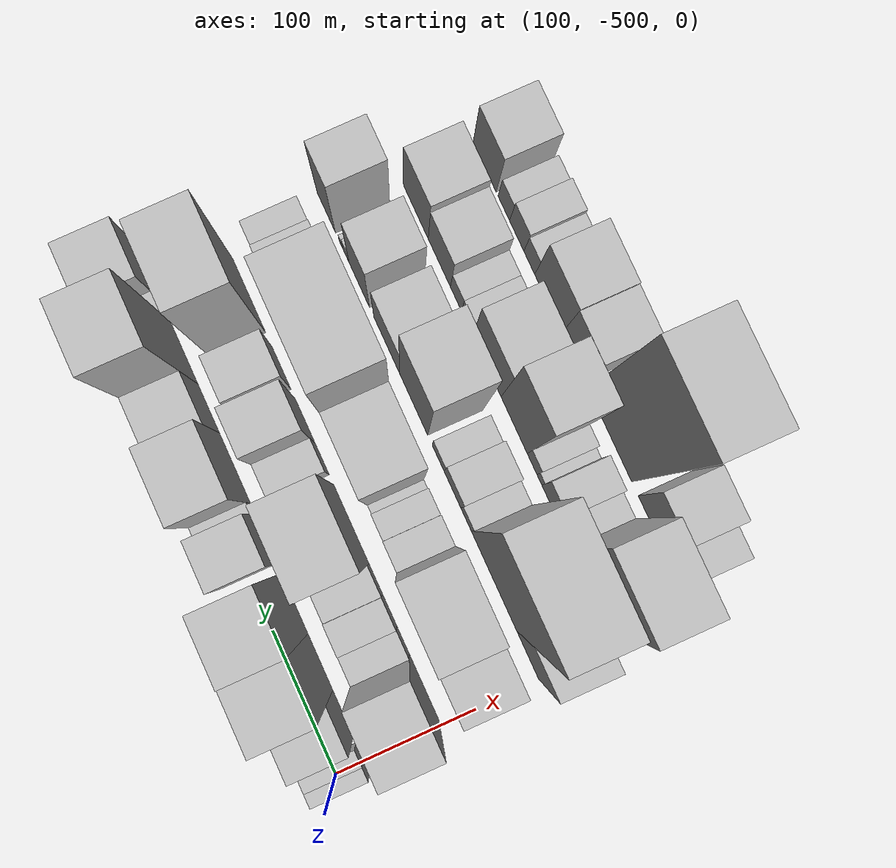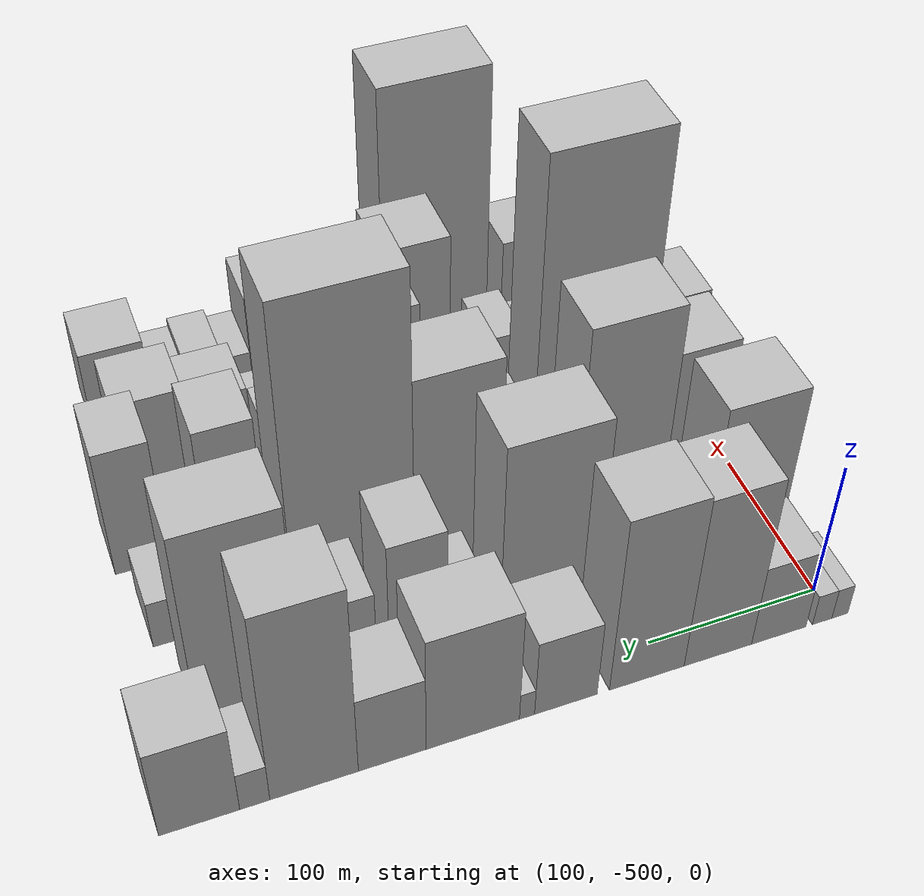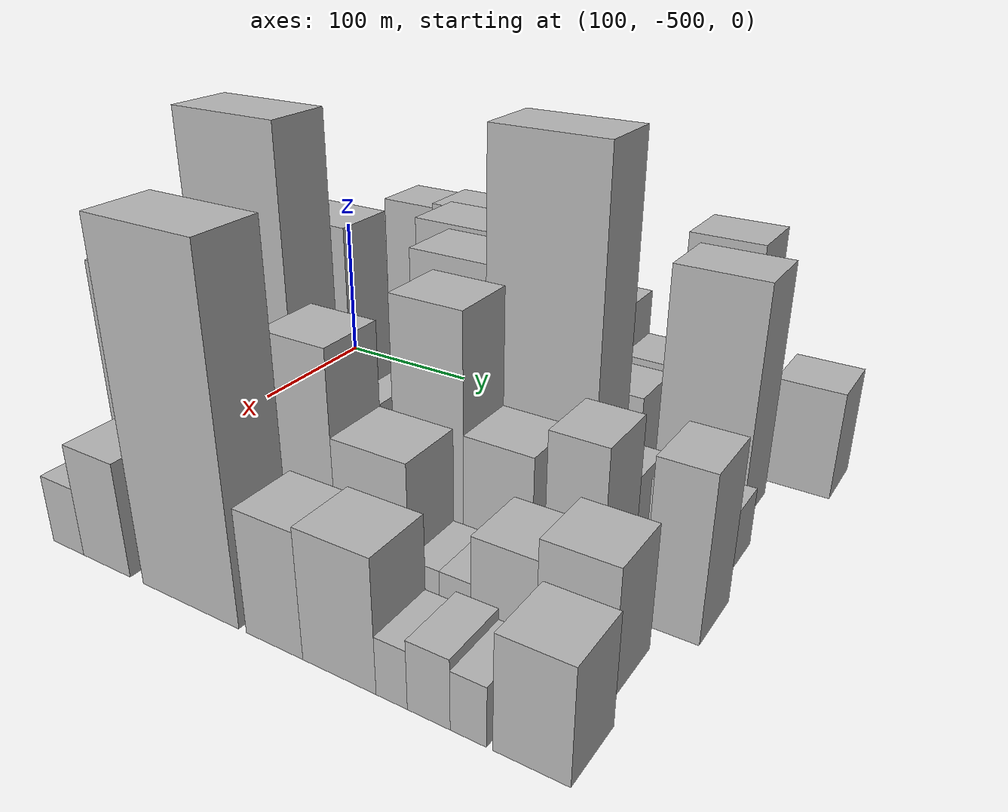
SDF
<sdf version="1.6">
 <world name="default">
  <model name="building_9">
   <static>1</static>
   <pose>100.0000 -504.2297 0 0.000000 0.000000 0.000000</pose>
   <link name="link">
    <pose>0 0 12.00 0 0 0</pose>
    <collision name="collision"><geometry><box><size>40.0000 9.7638 24.0000</size></box></geometry></collision>
    <visual name="visual">
     <cast_shadows>0</cast_shadows>
     <geometry><box><size>40.0000 9.7638 24.0000</size></box></geometry>
     <material>
      <script>
       <uri>model://HANNAS_wall/materials/scripts</uri>
       <uri>model://HANNAS_wall/materials/textures</uri>
       <name>vrc/HANNAS_wall</name>
      </script>
     </material>
    </visual>
   </link>
  </model>
  <model name="building_10">
   <static>1</static>
   <pose>100.0000 -493.4084 0 0.000000 0.000000 0.000000</pose>
   <link name="link">
    <pose>0 0 12.00 0 0 0</pose>
    <collision name="collision"><geometry><box><size>40.0000 11.8788 24.0000</size></box></geometry></collision>
    <visual name="visual">
     <cast_shadows>0</cast_shadows>
     <geometry><box><size>40.0000 11.8788 24.0000</size></box></geometry>
     <material>
      <script>
       <uri>model://HANNAS_wall/materials/scripts</uri>
       <uri>model://HANNAS_wall/materials/textures</uri>
       <name>vrc/HANNAS_wall</name>
      </script>
     </material>
    </visual>
   </link>
  </model>
  <model name="building_11">
   <static>1</static>
   <pose>100.0000 -467.0780 0 0.000000 0.000000 0.000000</pose>
   <link name="link">
    <pose>0 0 31.50 0 0 0</pose>
    <collision name="collision"><geometry><box><size>40.0000 32.7820 63.0000</size></box></geometry></collision>
    <visual name="visual">
     <cast_shadows>0</cast_shadows>
     <geometry><box><size>40.0000 32.7820 63.0000</size></box></geometry>
     <material>
      <script>
       <uri>model://HANNAS_wall/materials/scripts</uri>
       <uri>model://HANNAS_wall/materials/textures</uri>
       <name>vrc/HANNAS_wall</name>
      </script>
     </material>
    </visual>
   </link>
  </model>
  <model name="building_12">
   <static>1</static>
   <pose>100.0000 -430.7783 0 0.000000 0.000000 0.000000</pose>
   <link name="link">
    <pose>0 0 66.00 0 0 0</pose>
    <collision name="collision"><geometry><box><size>40.0000 39.8175 132.0000</size></box></geometry></collision>
    <visual name="visual">
     <cast_shadows>0</cast_shadows>
     <geometry><box><size>40.0000 39.8175 132.0000</size></box></geometry>
     <material>
      <script>
       <uri>model://HANNAS_wall/materials/scripts</uri>
       <uri>model://HANNAS_wall/materials/textures</uri>
       <name>vrc/HANNAS_wall</name>
      </script>
     </material>
    </visual>
   </link>
  </model>
  <model name="building_13">
   <static>1</static>
   <pose>100.0000 -389.3200 0 0.000000 0.000000 0.000000</pose>
   <link name="link">
    <pose>0 0 67.50 0 0 0</pose>
    <collision name="collision"><geometry><box><size>40.0000 43.0991 135.0000</size></box></geometry></collision>
    <visual name="visual">
     <cast_shadows>0</cast_shadows>
     <geometry><box><size>40.0000 43.0991 135.0000</size></box></geometry>
     <material>
      <script>
       <uri>model://HANNAS_wall/materials/scripts</uri>
       <uri>model://HANNAS_wall/materials/textures</uri>
       <name>vrc/HANNAS_wall</name>
      </script>
     </material>
    </visual>
   </link>
  </model>
  <model name="building_14">
   <static>1</static>
   <pose>100.0000 -343.1972 0 0.000000 0.000000 0.000000</pose>
   <link name="link">
    <pose>0 0 30.00 0 0 0</pose>
    <collision name="collision"><geometry><box><size>40.0000 35.1464 60.0000</size></box></geometry></collision>
    <visual name="visual">
     <cast_shadows>0</cast_shadows>
     <geometry><box><size>40.0000 35.1464 60.0000</size></box></geometry>
     <material>
      <script>
       <uri>model://HANNAS_wall/materials/scripts</uri>
       <uri>model://HANNAS_wall/materials/textures</uri>
       <name>vrc/HANNAS_wall</name>
      </script>
     </material>
    </visual>
   </link>
  </model>
  <model name="building_15">
   <static>1</static>
   <pose>100.0000 -321.4226 0 0.000000 0.000000 0.000000</pose>
   <link name="link">
    <pose>0 0 10.50 0 0 0</pose>
    <collision name="collision"><geometry><box><size>40.0000 8.4029 21.0000</size></box></geometry></collision>
    <visual name="visual">
     <cast_shadows>0</cast_shadows>
     <geometry><box><size>40.0000 8.4029 21.0000</size></box></geometry>
     <material>
      <script>
       <uri>model://HANNAS_wall/materials/scripts</uri>
       <uri>model://HANNAS_wall/materials/textures</uri>
       <name>vrc/HANNAS_wall</name>
      </script>
     </material>
    </visual>
   </link>
  </model>
  <model name="building_16">
   <static>1</static>
   <pose>100.0000 -291.7921 0 0.000000 0.000000 0.000000</pose>
   <link name="link">
    <pose>0 0 45.00 0 0 0</pose>
    <collision name="collision"><geometry><box><size>40.0000 50.8580 90.0000</size></box></geometry></collision>
    <visual name="visual">
     <cast_shadows>0</cast_shadows>
     <geometry><box><size>40.0000 50.8580 90.0000</size></box></geometry>
     <material>
      <script>
       <uri>model://HANNAS_wall/materials/scripts</uri>
       <uri>model://HANNAS_wall/materials/textures</uri>
       <name>vrc/HANNAS_wall</name>
      </script>
     </material>
    </visual>
   </link>
  </model>
  <model name="building_17">
   <static>1</static>
   <pose>100.0000 -248.3700 0 0.000000 0.000000 0.000000</pose>
   <link name="link">
    <pose>0 0 30.00 0 0 0</pose>
    <collision name="collision"><geometry><box><size>40.0000 35.9863 60.0000</size></box></geometry></collision>
    <visual name="visual">
     <cast_shadows>0</cast_shadows>
     <geometry><box><size>40.0000 35.9863 60.0000</size></box></geometry>
     <material>
      <script>
       <uri>model://HANNAS_wall/materials/scripts</uri>
       <uri>model://HANNAS_wall/materials/textures</uri>
       <name>vrc/HANNAS_wall</name>
      </script>
     </material>
    </visual>
   </link>
  </model>
  <model name="building_18">
   <static>1</static>
   <pose>100.0000 -207.3975 0 0.000000 0.000000 0.000000</pose>
   <link name="link">
    <pose>0 0 73.50 0 0 0</pose>
    <collision name="collision"><geometry><box><size>40.0000 45.9587 147.0000</size></box></geometry></collision>
    <visual name="visual">
     <cast_shadows>0</cast_shadows>
     <geometry><box><size>40.0000 45.9587 147.0000</size></box></geometry>
     <material>
      <script>
       <uri>model://HANNAS_wall/materials/scripts</uri>
       <uri>model://HANNAS_wall/materials/textures</uri>
       <name>vrc/HANNAS_wall</name>
      </script>
     </material>
    </visual>
   </link>
  </model>
  <model name="building_19">
   <static>1</static>
   <pose>100.0000 -176.7365 0 0.000000 0.000000 0.000000</pose>
   <link name="link">
    <pose>0 0 15.00 0 0 0</pose>
    <collision name="collision"><geometry><box><size>40.0000 15.3634 30.0000</size></box></geometry></collision>
    <visual name="visual">
     <cast_shadows>0</cast_shadows>
     <geometry><box><size>40.0000 15.3634 30.0000</size></box></geometry>
     <material>
      <script>
       <uri>model://HANNAS_wall/materials/scripts</uri>
       <uri>model://HANNAS_wall/materials/textures</uri>
       <name>vrc/HANNAS_wall</name>
      </script>
     </material>
    </visual>
   </link>
  </model>
  <model name="building_20">
   <static>1</static>
   <pose>100.0000 -148.7223 0 0.000000 0.000000 0.000000</pose>
   <link name="link">
    <pose>0 0 34.50 0 0 0</pose>
    <collision name="collision"><geometry><box><size>40.0000 40.6649 69.0000</size></box></geometry></collision>
    <visual name="visual">
     <cast_shadows>0</cast_shadows>
     <geometry><box><size>40.0000 40.6649 69.0000</size></box></geometry>
     <material>
      <script>
       <uri>model://HANNAS_wall/materials/scripts</uri>
       <uri>model://HANNAS_wall/materials/textures</uri>
       <name>vrc/HANNAS_wall</name>
      </script>
     </material>
    </visual>
   </link>
  </model>
  <model name="building_57">
   <static>1</static>
   <pose>155.0000 -472.8988 0 0.000000 0.000000 0.000000</pose>
   <link name="link">
    <pose>0 0 63.00 0 0 0</pose>
    <collision name="collision"><geometry><box><size>40.0000 47.0938 126.0000</size></box></geometry></collision>
    <visual name="visual">
     <cast_shadows>0</cast_shadows>
     <geometry><box><size>40.0000 47.0938 126.0000</size></box></geometry>
     <material>
      <script>
       <uri>model://HANNAS_wall/materials/scripts</uri>
       <uri>model://HANNAS_wall/materials/textures</uri>
       <name>vrc/HANNAS_wall</name>
      </script>
     </material>
    </visual>
   </link>
  </model>
  <model name="building_58">
   <static>1</static>
   <pose>155.0000 -439.5121 0 0.000000 0.000000 0.000000</pose>
   <link name="link">
    <pose>0 0 18.00 0 0 0</pose>
    <collision name="collision"><geometry><box><size>40.0000 19.6796 36.0000</size></box></geometry></collision>
    <visual name="visual">
     <cast_shadows>0</cast_shadows>
     <geometry><box><size>40.0000 19.6796 36.0000</size></box></geometry>
     <material>
      <script>
       <uri>model://HANNAS_wall/materials/scripts</uri>
       <uri>model://HANNAS_wall/materials/textures</uri>
       <name>vrc/HANNAS_wall</name>
      </script>
     </material>
    </visual>
   </link>
  </model>
  <model name="building_59">
   <static>1</static>
   <pose>155.0000 -418.4448 0 0.000000 0.000000 0.000000</pose>
   <link name="link">
    <pose>0 0 19.50 0 0 0</pose>
    <collision name="collision"><geometry><box><size>40.0000 22.4549 39.0000</size></box></geometry></collision>
    <visual name="visual">
     <cast_shadows>0</cast_shadows>
     <geometry><box><size>40.0000 22.4549 39.0000</size></box></geometry>
     <material>
      <script>
       <uri>model://HANNAS_wall/materials/scripts</uri>
       <uri>model://HANNAS_wall/materials/textures</uri>
       <name>vrc/HANNAS_wall</name>
      </script>
     </material>
    </visual>
   </link>
  </model>
  <model name="building_60">
   <static>1</static>
   <pose>155.0000 -396.4209 0 0.000000 0.000000 0.000000</pose>
   <link name="link">
    <pose>0 0 18.00 0 0 0</pose>
    <collision name="collision"><geometry><box><size>40.0000 21.5930 36.0000</size></box></geometry></collision>
    <visual name="visual">
     <cast_shadows>0</cast_shadows>
     <geometry><box><size>40.0000 21.5930 36.0000</size></box></geometry>
     <material>
      <script>
       <uri>model://HANNAS_wall/materials/scripts</uri>
       <uri>model://HANNAS_wall/materials/textures</uri>
       <name>vrc/HANNAS_wall</name>
      </script>
     </material>
    </visual>
   </link>
  </model>
  <model name="building_61">
   <static>1</static>
   <pose>155.0000 -357.1461 0 0.000000 0.000000 0.000000</pose>
   <link name="link">
    <pose>0 0 72.00 0 0 0</pose>
    <collision name="collision"><geometry><box><size>40.0000 56.9566 144.0000</size></box></geometry></collision>
    <visual name="visual">
     <cast_shadows>0</cast_shadows>
     <geometry><box><size>40.0000 56.9566 144.0000</size></box></geometry>
     <material>
      <script>
       <uri>model://HANNAS_wall/materials/scripts</uri>
       <uri>model://HANNAS_wall/materials/textures</uri>
       <name>vrc/HANNAS_wall</name>
      </script>
     </material>
    </visual>
   </link>
  </model>
  <model name="building_62">
   <static>1</static>
   <pose>155.0000 -310.1881 0 0.000000 0.000000 0.000000</pose>
   <link name="link">
    <pose>0 0 21.00 0 0 0</pose>
    <collision name="collision"><geometry><box><size>40.0000 22.9594 42.0000</size></box></geometry></collision>
    <visual name="visual">
     <cast_shadows>0</cast_shadows>
     <geometry><box><size>40.0000 22.9594 42.0000</size></box></geometry>
     <material>
      <script>
       <uri>model://HANNAS_wall/materials/scripts</uri>
       <uri>model://HANNAS_wall/materials/textures</uri>
       <name>vrc/HANNAS_wall</name>
      </script>
     </material>
    </visual>
   </link>
  </model>
  <model name="building_63">
   <static>1</static>
   <pose>155.0000 -282.5403 0 0.000000 0.000000 0.000000</pose>
   <link name="link">
    <pose>0 0 48.00 0 0 0</pose>
    <collision name="collision"><geometry><box><size>40.0000 32.3364 96.0000</size></box></geometry></collision>
    <visual name="visual">
     <cast_shadows>0</cast_shadows>
     <geometry><box><size>40.0000 32.3364 96.0000</size></box></geometry>
     <material>
      <script>
       <uri>model://HANNAS_wall/materials/scripts</uri>
       <uri>model://HANNAS_wall/materials/textures</uri>
       <name>vrc/HANNAS_wall</name>
      </script>
     </material>
    </visual>
   </link>
  </model>
  <model name="building_64">
   <static>1</static>
   <pose>155.0000 -243.5212 0 0.000000 0.000000 0.000000</pose>
   <link name="link">
    <pose>0 0 31.50 0 0 0</pose>
    <collision name="collision"><geometry><box><size>40.0000 31.7018 63.0000</size></box></geometry></collision>
    <visual name="visual">
     <cast_shadows>0</cast_shadows>
     <geometry><box><size>40.0000 31.7018 63.0000</size></box></geometry>
     <material>
      <script>
       <uri>model://HANNAS_wall/materials/scripts</uri>
       <uri>model://HANNAS_wall/materials/textures</uri>
       <name>vrc/HANNAS_wall</name>
      </script>
     </material>
    </visual>
   </link>
  </model>
  <model name="building_65">
   <static>1</static>
   <pose>155.0000 -190.1250 0 0.000000 0.000000 0.000000</pose>
   <link name="link">
    <pose>0 0 73.50 0 0 0</pose>
    <collision name="collision"><geometry><box><size>40.0000 55.0906 147.0000</size></box></geometry></collision>
    <visual name="visual">
     <cast_shadows>0</cast_shadows>
     <geometry><box><size>40.0000 55.0906 147.0000</size></box></geometry>
     <material>
      <script>
       <uri>model://HANNAS_wall/materials/scripts</uri>
       <uri>model://HANNAS_wall/materials/textures</uri>
       <name>vrc/HANNAS_wall</name>
      </script>
     </material>
    </visual>
   </link>
  </model>
  <model name="building_109">
   <static>1</static>
   <pose>210.0000 -469.6019 0 0.000000 0.000000 0.000000</pose>
   <link name="link">
    <pose>0 0 57.00 0 0 0</pose>
    <collision name="collision"><geometry><box><size>40.0000 35.8735 114.0000</size></box></geometry></collision>
    <visual name="visual">
     <cast_shadows>0</cast_shadows>
     <geometry><box><size>40.0000 35.8735 114.0000</size></box></geometry>
     <material>
      <script>
       <uri>model://HANNAS_wall/materials/scripts</uri>
       <uri>model://HANNAS_wall/materials/textures</uri>
       <name>vrc/HANNAS_wall</name>
      </script>
     </material>
    </visual>
   </link>
  </model>
  <model name="building_110">
   <static>1</static>
   <pose>210.0000 -424.4477 0 0.000000 0.000000 0.000000</pose>
   <link name="link">
    <pose>0 0 75.00 0 0 0</pose>
    <collision name="collision"><geometry><box><size>40.0000 54.4349 150.0000</size></box></geometry></collision>
    <visual name="visual">
     <cast_shadows>0</cast_shadows>
     <geometry><box><size>40.0000 54.4349 150.0000</size></box></geometry>
     <material>
      <script>
       <uri>model://HANNAS_wall/materials/scripts</uri>
       <uri>model://HANNAS_wall/materials/textures</uri>
       <name>vrc/HANNAS_wall</name>
      </script>
     </material>
    </visual>
   </link>
  </model>
  <model name="building_111">
   <static>1</static>
   <pose>210.0000 -386.6188 0 0.000000 0.000000 0.000000</pose>
   <link name="link">
    <pose>0 0 21.00 0 0 0</pose>
    <collision name="collision"><geometry><box><size>40.0000 21.2228 42.0000</size></box></geometry></collision>
    <visual name="visual">
     <cast_shadows>0</cast_shadows>
     <geometry><box><size>40.0000 21.2228 42.0000</size></box></geometry>
     <material>
      <script>
       <uri>model://HANNAS_wall/materials/scripts</uri>
       <uri>model://HANNAS_wall/materials/textures</uri>
       <name>vrc/HANNAS_wall</name>
      </script>
     </material>
    </visual>
   </link>
  </model>
  <model name="building_112">
   <static>1</static>
   <pose>210.0000 -366.6931 0 0.000000 0.000000 0.000000</pose>
   <link name="link">
    <pose>0 0 16.50 0 0 0</pose>
    <collision name="collision"><geometry><box><size>40.0000 18.6286 33.0000</size></box></geometry></collision>
    <visual name="visual">
     <cast_shadows>0</cast_shadows>
     <geometry><box><size>40.0000 18.6286 33.0000</size></box></geometry>
     <material>
      <script>
       <uri>model://HANNAS_wall/materials/scripts</uri>
       <uri>model://HANNAS_wall/materials/textures</uri>
       <name>vrc/HANNAS_wall</name>
      </script>
     </material>
    </visual>
   </link>
  </model>
  <model name="building_113">
   <static>1</static>
   <pose>210.0000 -354.0494 0 0.000000 0.000000 0.000000</pose>
   <link name="link">
    <pose>0 0 7.50 0 0 0</pose>
    <collision name="collision"><geometry><box><size>40.0000 6.6588 15.0000</size></box></geometry></collision>
    <visual name="visual">
     <cast_shadows>0</cast_shadows>
     <geometry><box><size>40.0000 6.6588 15.0000</size></box></geometry>
     <material>
      <script>
       <uri>model://HANNAS_wall/materials/scripts</uri>
       <uri>model://HANNAS_wall/materials/textures</uri>
       <name>vrc/HANNAS_wall</name>
      </script>
     </material>
    </visual>
   </link>
  </model>
  <model name="building_114">
   <static>1</static>
   <pose>210.0000 -325.5482 0 0.000000 0.000000 0.000000</pose>
   <link name="link">
    <pose>0 0 73.50 0 0 0</pose>
    <collision name="collision"><geometry><box><size>40.0000 50.3438 147.0000</size></box></geometry></collision>
    <visual name="visual">
     <cast_shadows>0</cast_shadows>
     <geometry><box><size>40.0000 50.3438 147.0000</size></box></geometry>
     <material>
      <script>
       <uri>model://HANNAS_wall/materials/scripts</uri>
       <uri>model://HANNAS_wall/materials/textures</uri>
       <name>vrc/HANNAS_wall</name>
      </script>
     </material>
    </visual>
   </link>
  </model>
  <model name="building_115">
   <static>1</static>
   <pose>210.0000 -265.4553 0 0.000000 0.000000 0.000000</pose>
   <link name="link">
    <pose>0 0 111.00 0 0 0</pose>
    <collision name="collision"><geometry><box><size>40.0000 69.8419 222.0000</size></box></geometry></collision>
    <visual name="visual">
     <cast_shadows>0</cast_shadows>
     <geometry><box><size>40.0000 69.8419 222.0000</size></box></geometry>
     <material>
      <script>
       <uri>model://HANNAS_wall/materials/scripts</uri>
       <uri>model://HANNAS_wall/materials/textures</uri>
       <name>vrc/HANNAS_wall</name>
      </script>
     </material>
    </visual>
   </link>
  </model>
  <model name="building_116">
   <static>1</static>
   <pose>210.0000 -218.4045 0 0.000000 0.000000 0.000000</pose>
   <link name="link">
    <pose>0 0 21.00 0 0 0</pose>
    <collision name="collision"><geometry><box><size>40.0000 24.2596 42.0000</size></box></geometry></collision>
    <visual name="visual">
     <cast_shadows>0</cast_shadows>
     <geometry><box><size>40.0000 24.2596 42.0000</size></box></geometry>
     <material>
      <script>
       <uri>model://HANNAS_wall/materials/scripts</uri>
       <uri>model://HANNAS_wall/materials/textures</uri>
       <name>vrc/HANNAS_wall</name>
      </script>
     </material>
    </visual>
   </link>
  </model>
  <model name="building_117">
   <static>1</static>
   <pose>210.0000 -185.2495 0 0.000000 0.000000 0.000000</pose>
   <link name="link">
    <pose>0 0 24.00 0 0 0</pose>
    <collision name="collision"><geometry><box><size>40.0000 24.0506 48.0000</size></box></geometry></collision>
    <visual name="visual">
     <cast_shadows>0</cast_shadows>
     <geometry><box><size>40.0000 24.0506 48.0000</size></box></geometry>
     <material>
      <script>
       <uri>model://HANNAS_wall/materials/scripts</uri>
       <uri>model://HANNAS_wall/materials/textures</uri>
       <name>vrc/HANNAS_wall</name>
      </script>
     </material>
    </visual>
   </link>
  </model>
  <model name="building_118">
   <static>1</static>
   <pose>210.0000 -162.8973 0 0.000000 0.000000 0.000000</pose>
   <link name="link">
    <pose>0 0 18.00 0 0 0</pose>
    <collision name="collision"><geometry><box><size>40.0000 20.6538 36.0000</size></box></geometry></collision>
    <visual name="visual">
     <cast_shadows>0</cast_shadows>
     <geometry><box><size>40.0000 20.6538 36.0000</size></box></geometry>
     <material>
      <script>
       <uri>model://HANNAS_wall/materials/scripts</uri>
       <uri>model://HANNAS_wall/materials/textures</uri>
       <name>vrc/HANNAS_wall</name>
      </script>
     </material>
    </visual>
   </link>
  </model>
  <model name="building_163">
   <static>1</static>
   <pose>265.0000 -482.1149 0 0.000000 0.000000 0.000000</pose>
   <link name="link">
    <pose>0 0 49.50 0 0 0</pose>
    <collision name="collision"><geometry><box><size>40.0000 34.0230 99.0000</size></box></geometry></collision>
    <visual name="visual">
     <cast_shadows>0</cast_shadows>
     <geometry><box><size>40.0000 34.0230 99.0000</size></box></geometry>
     <material>
      <script>
       <uri>model://HANNAS_wall/materials/scripts</uri>
       <uri>model://HANNAS_wall/materials/textures</uri>
       <name>vrc/HANNAS_wall</name>
      </script>
     </material>
    </visual>
   </link>
  </model>
  <model name="building_164">
   <static>1</static>
   <pose>265.0000 -429.4945 0 0.000000 0.000000 0.000000</pose>
   <link name="link">
    <pose>0 0 111.00 0 0 0</pose>
    <collision name="collision"><geometry><box><size>40.0000 71.2177 222.0000</size></box></geometry></collision>
    <visual name="visual">
     <cast_shadows>0</cast_shadows>
     <geometry><box><size>40.0000 71.2177 222.0000</size></box></geometry>
     <material>
      <script>
       <uri>model://HANNAS_wall/materials/scripts</uri>
       <uri>model://HANNAS_wall/materials/textures</uri>
       <name>vrc/HANNAS_wall</name>
      </script>
     </material>
    </visual>
   </link>
  </model>
  <model name="building_165">
   <static>1</static>
   <pose>265.0000 -385.5086 0 0.000000 0.000000 0.000000</pose>
   <link name="link">
    <pose>0 0 16.50 0 0 0</pose>
    <collision name="collision"><geometry><box><size>40.0000 16.7542 33.0000</size></box></geometry></collision>
    <visual name="visual">
     <cast_shadows>0</cast_shadows>
     <geometry><box><size>40.0000 16.7542 33.0000</size></box></geometry>
     <material>
      <script>
       <uri>model://HANNAS_wall/materials/scripts</uri>
       <uri>model://HANNAS_wall/materials/textures</uri>
       <name>vrc/HANNAS_wall</name>
      </script>
     </material>
    </visual>
   </link>
  </model>
  <model name="building_166">
   <static>1</static>
   <pose>265.0000 -363.9557 0 0.000000 0.000000 0.000000</pose>
   <link name="link">
    <pose>0 0 24.00 0 0 0</pose>
    <collision name="collision"><geometry><box><size>40.0000 26.3517 48.0000</size></box></geometry></collision>
    <visual name="visual">
     <cast_shadows>0</cast_shadows>
     <geometry><box><size>40.0000 26.3517 48.0000</size></box></geometry>
     <material>
      <script>
       <uri>model://HANNAS_wall/materials/scripts</uri>
       <uri>model://HANNAS_wall/materials/textures</uri>
       <name>vrc/HANNAS_wall</name>
      </script>
     </material>
    </visual>
   </link>
  </model>
  <model name="building_167">
   <static>1</static>
   <pose>265.0000 -341.1456 0 0.000000 0.000000 0.000000</pose>
   <link name="link">
    <pose>0 0 16.50 0 0 0</pose>
    <collision name="collision"><geometry><box><size>40.0000 19.2686 33.0000</size></box></geometry></collision>
    <visual name="visual">
     <cast_shadows>0</cast_shadows>
     <geometry><box><size>40.0000 19.2686 33.0000</size></box></geometry>
     <material>
      <script>
       <uri>model://HANNAS_wall/materials/scripts</uri>
       <uri>model://HANNAS_wall/materials/textures</uri>
       <name>vrc/HANNAS_wall</name>
      </script>
     </material>
    </visual>
   </link>
  </model>
  <model name="building_168">
   <static>1</static>
   <pose>265.0000 -302.0893 0 0.000000 0.000000 0.000000</pose>
   <link name="link">
    <pose>0 0 72.00 0 0 0</pose>
    <collision name="collision"><geometry><box><size>40.0000 44.8439 144.0000</size></box></geometry></collision>
    <visual name="visual">
     <cast_shadows>0</cast_shadows>
     <geometry><box><size>40.0000 44.8439 144.0000</size></box></geometry>
     <material>
      <script>
       <uri>model://HANNAS_wall/materials/scripts</uri>
       <uri>model://HANNAS_wall/materials/textures</uri>
       <name>vrc/HANNAS_wall</name>
      </script>
     </material>
    </visual>
   </link>
  </model>
  <model name="building_169">
   <static>1</static>
   <pose>265.0000 -258.6333 0 0.000000 0.000000 0.000000</pose>
   <link name="link">
    <pose>0 0 37.50 0 0 0</pose>
    <collision name="collision"><geometry><box><size>40.0000 42.0683 75.0000</size></box></geometry></collision>
    <visual name="visual">
     <cast_shadows>0</cast_shadows>
     <geometry><box><size>40.0000 42.0683 75.0000</size></box></geometry>
     <material>
      <script>
       <uri>model://HANNAS_wall/materials/scripts</uri>
       <uri>model://HANNAS_wall/materials/textures</uri>
       <name>vrc/HANNAS_wall</name>
      </script>
     </material>
    </visual>
   </link>
  </model>
  <model name="building_170">
   <static>1</static>
   <pose>265.0000 -213.9105 0 0.000000 0.000000 0.000000</pose>
   <link name="link">
    <pose>0 0 46.50 0 0 0</pose>
    <collision name="collision"><geometry><box><size>40.0000 33.3772 93.0000</size></box></geometry></collision>
    <visual name="visual">
     <cast_shadows>0</cast_shadows>
     <geometry><box><size>40.0000 33.3772 93.0000</size></box></geometry>
     <material>
      <script>
       <uri>model://HANNAS_wall/materials/scripts</uri>
       <uri>model://HANNAS_wall/materials/textures</uri>
       <name>vrc/HANNAS_wall</name>
      </script>
     </material>
    </visual>
   </link>
  </model>
  <model name="building_171">
   <static>1</static>
   <pose>265.0000 -192.1438 0 0.000000 0.000000 0.000000</pose>
   <link name="link">
    <pose>0 0 12.00 0 0 0</pose>
    <collision name="collision"><geometry><box><size>40.0000 10.1562 24.0000</size></box></geometry></collision>
    <visual name="visual">
     <cast_shadows>0</cast_shadows>
     <geometry><box><size>40.0000 10.1562 24.0000</size></box></geometry>
     <material>
      <script>
       <uri>model://HANNAS_wall/materials/scripts</uri>
       <uri>model://HANNAS_wall/materials/textures</uri>
       <name>vrc/HANNAS_wall</name>
      </script>
     </material>
    </visual>
   </link>
  </model>
  <model name="building_172">
   <static>1</static>
   <pose>265.0000 -183.9911 0 0.000000 0.000000 0.000000</pose>
   <link name="link">
    <pose>0 0 7.50 0 0 0</pose>
    <collision name="collision"><geometry><box><size>40.0000 6.1491 15.0000</size></box></geometry></collision>
    <visual name="visual">
     <cast_shadows>0</cast_shadows>
     <geometry><box><size>40.0000 6.1491 15.0000</size></box></geometry>
     <material>
      <script>
       <uri>model://HANNAS_wall/materials/scripts</uri>
       <uri>model://HANNAS_wall/materials/textures</uri>
       <name>vrc/HANNAS_wall</name>
      </script>
     </material>
    </visual>
   </link>
  </model>
  <model name="building_173">
   <static>1</static>
   <pose>265.0000 -159.7712 0 0.000000 0.000000 0.000000</pose>
   <link name="link">
    <pose>0 0 48.00 0 0 0</pose>
    <collision name="collision"><geometry><box><size>40.0000 30.2908 96.0000</size></box></geometry></collision>
    <visual name="visual">
     <cast_shadows>0</cast_shadows>
     <geometry><box><size>40.0000 30.2908 96.0000</size></box></geometry>
     <material>
      <script>
       <uri>model://HANNAS_wall/materials/scripts</uri>
       <uri>model://HANNAS_wall/materials/textures</uri>
       <name>vrc/HANNAS_wall</name>
      </script>
     </material>
    </visual>
   </link>
  </model>
  <model name="building_219">
   <static>1</static>
   <pose>320.0000 -456.8958 0 0.000000 0.000000 0.000000</pose>
   <link name="link">
    <pose>0 0 73.50 0 0 0</pose>
    <collision name="collision"><geometry><box><size>40.0000 57.6851 147.0000</size></box></geometry></collision>
    <visual name="visual">
     <cast_shadows>0</cast_shadows>
     <geometry><box><size>40.0000 57.6851 147.0000</size></box></geometry>
     <material>
      <script>
       <uri>model://HANNAS_wall/materials/scripts</uri>
       <uri>model://HANNAS_wall/materials/textures</uri>
       <name>vrc/HANNAS_wall</name>
      </script>
     </material>
    </visual>
   </link>
  </model>
  <model name="building_220">
   <static>1</static>
   <pose>320.0000 -418.8032 0 0.000000 0.000000 0.000000</pose>
   <link name="link">
    <pose>0 0 18.00 0 0 0</pose>
    <collision name="collision"><geometry><box><size>40.0000 18.5001 36.0000</size></box></geometry></collision>
    <visual name="visual">
     <cast_shadows>0</cast_shadows>
     <geometry><box><size>40.0000 18.5001 36.0000</size></box></geometry>
     <material>
      <script>
       <uri>model://HANNAS_wall/materials/scripts</uri>
       <uri>model://HANNAS_wall/materials/textures</uri>
       <name>vrc/HANNAS_wall</name>
      </script>
     </material>
    </visual>
   </link>
  </model>
  <model name="building_221">
   <static>1</static>
   <pose>320.0000 -397.5000 0 0.000000 0.000000 0.000000</pose>
   <link name="link">
    <pose>0 0 24.00 0 0 0</pose>
    <collision name="collision"><geometry><box><size>40.0000 24.1065 48.0000</size></box></geometry></collision>
    <visual name="visual">
     <cast_shadows>0</cast_shadows>
     <geometry><box><size>40.0000 24.1065 48.0000</size></box></geometry>
     <material>
      <script>
       <uri>model://HANNAS_wall/materials/scripts</uri>
       <uri>model://HANNAS_wall/materials/textures</uri>
       <name>vrc/HANNAS_wall</name>
      </script>
     </material>
    </visual>
   </link>
  </model>
  <model name="building_222">
   <static>1</static>
   <pose>320.0000 -381.6640 0 0.000000 0.000000 0.000000</pose>
   <link name="link">
    <pose>0 0 9.00 0 0 0</pose>
    <collision name="collision"><geometry><box><size>40.0000 7.5656 18.0000</size></box></geometry></collision>
    <visual name="visual">
     <cast_shadows>0</cast_shadows>
     <geometry><box><size>40.0000 7.5656 18.0000</size></box></geometry>
     <material>
      <script>
       <uri>model://HANNAS_wall/materials/scripts</uri>
       <uri>model://HANNAS_wall/materials/textures</uri>
       <name>vrc/HANNAS_wall</name>
      </script>
     </material>
    </visual>
   </link>
  </model>
  <model name="building_223">
   <static>1</static>
   <pose>320.0000 -370.2752 0 0.000000 0.000000 0.000000</pose>
   <link name="link">
    <pose>0 0 15.00 0 0 0</pose>
    <collision name="collision"><geometry><box><size>40.0000 15.2119 30.0000</size></box></geometry></collision>
    <visual name="visual">
     <cast_shadows>0</cast_shadows>
     <geometry><box><size>40.0000 15.2119 30.0000</size></box></geometry>
     <material>
      <script>
       <uri>model://HANNAS_wall/materials/scripts</uri>
       <uri>model://HANNAS_wall/materials/textures</uri>
       <name>vrc/HANNAS_wall</name>
      </script>
     </material>
    </visual>
   </link>
  </model>
  <model name="building_224">
   <static>1</static>
   <pose>320.0000 -341.9649 0 0.000000 0.000000 0.000000</pose>
   <link name="link">
    <pose>0 0 67.50 0 0 0</pose>
    <collision name="collision"><geometry><box><size>40.0000 41.4088 135.0000</size></box></geometry></collision>
    <visual name="visual">
     <cast_shadows>0</cast_shadows>
     <geometry><box><size>40.0000 41.4088 135.0000</size></box></geometry>
     <material>
      <script>
       <uri>model://HANNAS_wall/materials/scripts</uri>
       <uri>model://HANNAS_wall/materials/textures</uri>
       <name>vrc/HANNAS_wall</name>
      </script>
     </material>
    </visual>
   </link>
  </model>
  <model name="building_225">
   <static>1</static>
   <pose>320.0000 -298.5910 0 0.000000 0.000000 0.000000</pose>
   <link name="link">
    <pose>0 0 43.50 0 0 0</pose>
    <collision name="collision"><geometry><box><size>40.0000 45.3391 87.0000</size></box></geometry></collision>
    <visual name="visual">
     <cast_shadows>0</cast_shadows>
     <geometry><box><size>40.0000 45.3391 87.0000</size></box></geometry>
     <material>
      <script>
       <uri>model://HANNAS_wall/materials/scripts</uri>
       <uri>model://HANNAS_wall/materials/textures</uri>
       <name>vrc/HANNAS_wall</name>
      </script>
     </material>
    </visual>
   </link>
  </model>
  <model name="building_226">
   <static>1</static>
   <pose>320.0000 -267.0337 0 0.000000 0.000000 0.000000</pose>
   <link name="link">
    <pose>0 0 16.50 0 0 0</pose>
    <collision name="collision"><geometry><box><size>40.0000 17.7754 33.0000</size></box></geometry></collision>
    <visual name="visual">
     <cast_shadows>0</cast_shadows>
     <geometry><box><size>40.0000 17.7754 33.0000</size></box></geometry>
     <material>
      <script>
       <uri>model://HANNAS_wall/materials/scripts</uri>
       <uri>model://HANNAS_wall/materials/textures</uri>
       <name>vrc/HANNAS_wall</name>
      </script>
     </material>
    </visual>
   </link>
  </model>
  <model name="building_227">
   <static>1</static>
   <pose>320.0000 -249.1152 0 0.000000 0.000000 0.000000</pose>
   <link name="link">
    <pose>0 0 16.50 0 0 0</pose>
    <collision name="collision"><geometry><box><size>40.0000 18.0617 33.0000</size></box></geometry></collision>
    <visual name="visual">
     <cast_shadows>0</cast_shadows>
     <geometry><box><size>40.0000 18.0617 33.0000</size></box></geometry>
     <material>
      <script>
       <uri>model://HANNAS_wall/materials/scripts</uri>
       <uri>model://HANNAS_wall/materials/textures</uri>
       <name>vrc/HANNAS_wall</name>
      </script>
     </material>
    </visual>
   </link>
  </model>
  <model name="building_228">
   <static>1</static>
   <pose>320.0000 -222.1507 0 0.000000 0.000000 0.000000</pose>
   <link name="link">
    <pose>0 0 30.00 0 0 0</pose>
    <collision name="collision"><geometry><box><size>40.0000 35.8675 60.0000</size></box></geometry></collision>
    <visual name="visual">
     <cast_shadows>0</cast_shadows>
     <geometry><box><size>40.0000 35.8675 60.0000</size></box></geometry>
     <material>
      <script>
       <uri>model://HANNAS_wall/materials/scripts</uri>
       <uri>model://HANNAS_wall/materials/textures</uri>
       <name>vrc/HANNAS_wall</name>
      </script>
     </material>
    </visual>
   </link>
  </model>
  <model name="building_229">
   <static>1</static>
   <pose>320.0000 -184.0367 0 0.000000 0.000000 0.000000</pose>
   <link name="link">
    <pose>0 0 36.00 0 0 0</pose>
    <collision name="collision"><geometry><box><size>40.0000 40.3605 72.0000</size></box></geometry></collision>
    <visual name="visual">
     <cast_shadows>0</cast_shadows>
     <geometry><box><size>40.0000 40.3605 72.0000</size></box></geometry>
     <material>
      <script>
       <uri>model://HANNAS_wall/materials/scripts</uri>
       <uri>model://HANNAS_wall/materials/textures</uri>
       <name>vrc/HANNAS_wall</name>
      </script>
     </material>
    </visual>
   </link>
  </model>
  <model name="building_269">
   <static>1</static>
   <pose>375.0000 -467.4085 0 0.000000 0.000000 0.000000</pose>
   <link name="link">
    <pose>0 0 21.00 0 0 0</pose>
    <collision name="collision"><geometry><box><size>40.0000 25.0924 42.0000</size></box></geometry></collision>
    <visual name="visual">
     <cast_shadows>0</cast_shadows>
     <geometry><box><size>40.0000 25.0924 42.0000</size></box></geometry>
     <material>
      <script>
       <uri>model://HANNAS_wall/materials/scripts</uri>
       <uri>model://HANNAS_wall/materials/textures</uri>
       <name>vrc/HANNAS_wall</name>
      </script>
     </material>
    </visual>
   </link>
  </model>
  <model name="building_270">
   <static>1</static>
   <pose>375.0000 -436.4411 0 0.000000 0.000000 0.000000</pose>
   <link name="link">
    <pose>0 0 34.50 0 0 0</pose>
    <collision name="collision"><geometry><box><size>40.0000 36.8423 69.0000</size></box></geometry></collision>
    <visual name="visual">
     <cast_shadows>0</cast_shadows>
     <geometry><box><size>40.0000 36.8423 69.0000</size></box></geometry>
     <material>
      <script>
       <uri>model://HANNAS_wall/materials/scripts</uri>
       <uri>model://HANNAS_wall/materials/textures</uri>
       <name>vrc/HANNAS_wall</name>
      </script>
     </material>
    </visual>
   </link>
  </model>
  <model name="building_271">
   <static>1</static>
   <pose>375.0000 -374.0585 0 0.000000 0.000000 0.000000</pose>
   <link name="link">
    <pose>0 0 100.50 0 0 0</pose>
    <collision name="collision"><geometry><box><size>40.0000 67.9230 201.0000</size></box></geometry></collision>
    <visual name="visual">
     <cast_shadows>0</cast_shadows>
     <geometry><box><size>40.0000 67.9230 201.0000</size></box></geometry>
     <material>
      <script>
       <uri>model://HANNAS_wall/materials/scripts</uri>
       <uri>model://HANNAS_wall/materials/textures</uri>
       <name>vrc/HANNAS_wall</name>
      </script>
     </material>
    </visual>
   </link>
  </model>
  <model name="building_272">
   <static>1</static>
   <pose>375.0000 -317.0354 0 0.000000 0.000000 0.000000</pose>
   <link name="link">
    <pose>0 0 36.00 0 0 0</pose>
    <collision name="collision"><geometry><box><size>40.0000 36.1233 72.0000</size></box></geometry></collision>
    <visual name="visual">
     <cast_shadows>0</cast_shadows>
     <geometry><box><size>40.0000 36.1233 72.0000</size></box></geometry>
     <material>
      <script>
       <uri>model://HANNAS_wall/materials/scripts</uri>
       <uri>model://HANNAS_wall/materials/textures</uri>
       <name>vrc/HANNAS_wall</name>
      </script>
     </material>
    </visual>
   </link>
  </model>
  <model name="building_273">
   <static>1</static>
   <pose>375.0000 -277.2955 0 0.000000 0.000000 0.000000</pose>
   <link name="link">
    <pose>0 0 37.50 0 0 0</pose>
    <collision name="collision"><geometry><box><size>40.0000 43.3565 75.0000</size></box></geometry></collision>
    <visual name="visual">
     <cast_shadows>0</cast_shadows>
     <geometry><box><size>40.0000 43.3565 75.0000</size></box></geometry>
     <material>
      <script>
       <uri>model://HANNAS_wall/materials/scripts</uri>
       <uri>model://HANNAS_wall/materials/textures</uri>
       <name>vrc/HANNAS_wall</name>
      </script>
     </material>
    </visual>
   </link>
  </model>
  <model name="building_274">
   <static>1</static>
   <pose>375.0000 -246.9483 0 0.000000 0.000000 0.000000</pose>
   <link name="link">
    <pose>0 0 16.50 0 0 0</pose>
    <collision name="collision"><geometry><box><size>40.0000 17.3378 33.0000</size></box></geometry></collision>
    <visual name="visual">
     <cast_shadows>0</cast_shadows>
     <geometry><box><size>40.0000 17.3378 33.0000</size></box></geometry>
     <material>
      <script>
       <uri>model://HANNAS_wall/materials/scripts</uri>
       <uri>model://HANNAS_wall/materials/textures</uri>
       <name>vrc/HANNAS_wall</name>
      </script>
     </material>
    </visual>
   </link>
  </model>
  <model name="building_275">
   <static>1</static>
   <pose>375.0000 -226.8346 0 0.000000 0.000000 0.000000</pose>
   <link name="link">
    <pose>0 0 19.50 0 0 0</pose>
    <collision name="collision"><geometry><box><size>40.0000 22.8895 39.0000</size></box></geometry></collision>
    <visual name="visual">
     <cast_shadows>0</cast_shadows>
     <geometry><box><size>40.0000 22.8895 39.0000</size></box></geometry>
     <material>
      <script>
       <uri>model://HANNAS_wall/materials/scripts</uri>
       <uri>model://HANNAS_wall/materials/textures</uri>
       <name>vrc/HANNAS_wall</name>
      </script>
     </material>
    </visual>
   </link>
  </model>
  <model name="building_276">
   <static>1</static>
   <pose>375.0000 -206.0748 0 0.000000 0.000000 0.000000</pose>
   <link name="link">
    <pose>0 0 16.50 0 0 0</pose>
    <collision name="collision"><geometry><box><size>40.0000 18.6302 33.0000</size></box></geometry></collision>
    <visual name="visual">
     <cast_shadows>0</cast_shadows>
     <geometry><box><size>40.0000 18.6302 33.0000</size></box></geometry>
     <material>
      <script>
       <uri>model://HANNAS_wall/materials/scripts</uri>
       <uri>model://HANNAS_wall/materials/textures</uri>
       <name>vrc/HANNAS_wall</name>
      </script>
     </material>
    </visual>
   </link>
  </model>
  <model name="building_277">
   <static>1</static>
   <pose>375.0000 -175.0528 0 0.000000 0.000000 0.000000</pose>
   <link name="link">
    <pose>0 0 31.50 0 0 0</pose>
    <collision name="collision"><geometry><box><size>40.0000 37.4138 63.0000</size></box></geometry></collision>
    <visual name="visual">
     <cast_shadows>0</cast_shadows>
     <geometry><box><size>40.0000 37.4138 63.0000</size></box></geometry>
     <material>
      <script>
       <uri>model://HANNAS_wall/materials/scripts</uri>
       <uri>model://HANNAS_wall/materials/textures</uri>
       <name>vrc/HANNAS_wall</name>
      </script>
     </material>
    </visual>
   </link>
  </model>
 </world>
</sdf>
